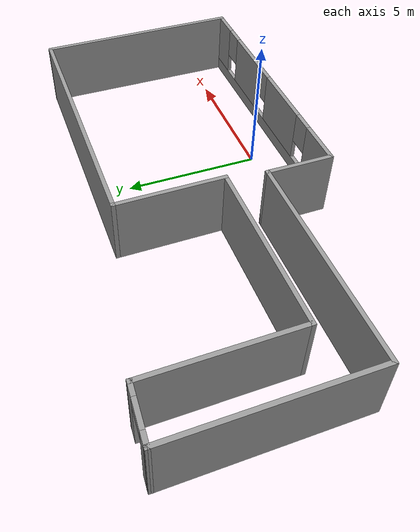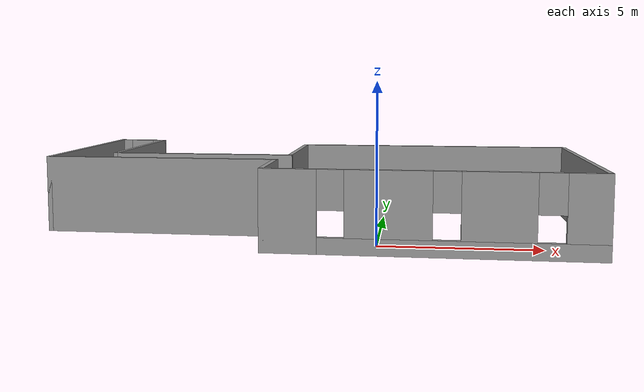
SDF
<?xml version='1.0'?>
<sdf version='1.6'>
  <model name='mapa_final'>
    <pose frame=''>-2.18923 3.20404 0 0 -0 0</pose>
    <link name='Wall_1'>
      <collision name='Wall_1_Collision'>
        <geometry>
          <box>
            <size>6.75 0.15 2.5</size>
          </box>
        </geometry>
        <pose frame=''>0 0 1.25 0 -0 0</pose>
      </collision>
      <visual name='Wall_1_Visual'>
        <pose frame=''>0 0 1.25 0 -0 0</pose>
        <geometry>
          <box>
            <size>6.75 0.15 2.5</size>
          </box>
        </geometry>
        <material>
          <script>
            <uri>file://media/materials/scripts/gazebo.material</uri>
            <name>Gazebo/Grey</name>
          </script>
          <ambient>1 1 1 1</ambient>
        </material>
      </visual>
      <pose frame=''>-8.72292 1.17292 0 0 0 -1.5708</pose>
    </link>
    <link name='Wall_10'>
      <pose frame=''>-7.84792 4.42292 0 0 -0 3.08451</pose>
      <visual name='Wall_10_Visual_0'>
        <pose frame=''>-0.700515 0 1.25 0 -0 0</pose>
        <geometry>
          <box>
            <size>0.501825 0.15 2.5</size>
          </box>
        </geometry>
        <material>
          <script>
            <uri>file://media/materials/scripts/gazebo.material</uri>
            <name>Gazebo/Grey</name>
          </script>
          <ambient>1 1 1 1</ambient>
        </material>
      </visual>
      <collision name='Wall_10_Collision_0'>
        <geometry>
          <box>
            <size>0.501825 0.15 2.5</size>
          </box>
        </geometry>
        <pose frame=''>-0.700515 0 1.25 0 -0 0</pose>
      </collision>
      <visual name='Wall_10_Visual_1'>
        <pose frame=''>0.700912 0 1.25 0 -0 0</pose>
        <geometry>
          <box>
            <size>0.50103 0.15 2.5</size>
          </box>
        </geometry>
        <material>
          <script>
            <uri>file://media/materials/scripts/gazebo.material</uri>
            <name>Gazebo/Grey</name>
          </script>
          <ambient>1 1 1 1</ambient>
        </material>
      </visual>
      <collision name='Wall_10_Collision_1'>
        <geometry>
          <box>
            <size>0.50103 0.15 2.5</size>
          </box>
        </geometry>
        <pose frame=''>0.700912 0 1.25 0 -0 0</pose>
      </collision>
      <visual name='Wall_10_Visual_2'>
        <pose frame=''>0.000397 0 2.25 0 -0 0</pose>
        <geometry>
          <box>
            <size>0.9 0.15 0.5</size>
          </box>
        </geometry>
        <material>
          <script>
            <uri>file://media/materials/scripts/gazebo.material</uri>
            <name>Gazebo/Grey</name>
          </script>
          <ambient>1 1 1 1</ambient>
        </material>
      </visual>
      <collision name='Wall_10_Collision_2'>
        <geometry>
          <box>
            <size>0.9 0.15 0.5</size>
          </box>
        </geometry>
        <pose frame=''>0.000397 0 2.25 0 -0 0</pose>
      </collision>
    </link>
    <link name='Wall_2'>
      <collision name='Wall_2_Collision'>
        <geometry>
          <box>
            <size>7.75 0.15 2.5</size>
          </box>
        </geometry>
        <pose frame=''>0 0 1.25 0 -0 0</pose>
      </collision>
      <visual name='Wall_2_Visual'>
        <pose frame=''>0 0 1.25 0 -0 0</pose>
        <geometry>
          <box>
            <size>7.75 0.15 2.5</size>
          </box>
        </geometry>
        <material>
          <script>
            <uri>file://media/materials/scripts/gazebo.material</uri>
            <name>Gazebo/Grey</name>
          </script>
          <ambient>1 1 1 1</ambient>
        </material>
      </visual>
      <pose frame=''>-4.92292 -2.12708 0 0 -0 0</pose>
    </link>
    <link name='Wall_3'>
      <collision name='Wall_3_Collision'>
        <geometry>
          <box>
            <size>2.5 0.15 2.5</size>
          </box>
        </geometry>
        <pose frame=''>0 0 1.25 0 -0 0</pose>
      </collision>
      <visual name='Wall_3_Visual'>
        <pose frame=''>0 0 1.25 0 -0 0</pose>
        <geometry>
          <box>
            <size>2.5 0.15 2.5</size>
          </box>
        </geometry>
        <material>
          <script>
            <uri>file://media/materials/scripts/gazebo.material</uri>
            <name>Gazebo/Grey</name>
          </script>
          <ambient>1 1 1 1</ambient>
        </material>
      </visual>
      <pose frame=''>-1.12292 -3.30208 0 0 0 -1.5708</pose>
    </link>
    <link name='Wall_4'>
      <pose frame=''>3.80208 -4.47708 0 0 -0 0</pose>
      <visual name='Wall_4_Visual_0'>
        <pose frame=''>-4.14301 0 1.25 0 -0 0</pose>
        <geometry>
          <box>
            <size>1.71398 0.15 2.5</size>
          </box>
        </geometry>
        <material>
          <script>
            <uri>file://media/materials/scripts/gazebo.material</uri>
            <name>Gazebo/Grey</name>
          </script>
          <ambient>1 1 1 1</ambient>
        </material>
      </visual>
      <collision name='Wall_4_Collision_0'>
        <geometry>
          <box>
            <size>1.71398 0.15 2.5</size>
          </box>
        </geometry>
        <pose frame=''>-4.14301 0 1.25 0 -0 0</pose>
      </collision>
      <visual name='Wall_4_Visual_1'>
        <pose frame=''>0.856991 0 0.25 0 -0 0</pose>
        <geometry>
          <box>
            <size>8.28602 0.15 0.5</size>
          </box>
        </geometry>
        <material>
          <script>
            <uri>file://media/materials/scripts/gazebo.material</uri>
            <name>Gazebo/Grey</name>
          </script>
          <ambient>1 1 1 1</ambient>
        </material>
      </visual>
      <collision name='Wall_4_Collision_1'>
        <geometry>
          <box>
            <size>8.28602 0.15 0.5</size>
          </box>
        </geometry>
        <pose frame=''>0.856991 0 0.25 0 -0 0</pose>
      </collision>
      <visual name='Wall_4_Visual_2'>
        <pose frame=''>-1.21503 0 1.5 0 -0 0</pose>
        <geometry>
          <box>
            <size>2.54198 0.15 2</size>
          </box>
        </geometry>
        <material>
          <script>
            <uri>file://media/materials/scripts/gazebo.material</uri>
            <name>Gazebo/Grey</name>
          </script>
          <ambient>1 1 1 1</ambient>
        </material>
      </visual>
      <collision name='Wall_4_Collision_2'>
        <geometry>
          <box>
            <size>2.54198 0.15 2</size>
          </box>
        </geometry>
        <pose frame=''>-1.21503 0 1.5 0 -0 0</pose>
      </collision>
      <visual name='Wall_4_Visual_3'>
        <pose frame=''>1.91588 0 1.5 0 -0 0</pose>
        <geometry>
          <box>
            <size>2.11984 0.15 2</size>
          </box>
        </geometry>
        <material>
          <script>
            <uri>file://media/materials/scripts/gazebo.material</uri>
            <name>Gazebo/Grey</name>
          </script>
          <ambient>1 1 1 1</ambient>
        </material>
      </visual>
      <collision name='Wall_4_Collision_3'>
        <geometry>
          <box>
            <size>2.11984 0.15 2</size>
          </box>
        </geometry>
        <pose frame=''>1.91588 0 1.5 0 -0 0</pose>
      </collision>
      <visual name='Wall_4_Visual_4'>
        <pose frame=''>4.3879 0 1.5 0 -0 0</pose>
        <geometry>
          <box>
            <size>1.2242 0.15 2</size>
          </box>
        </geometry>
        <material>
          <script>
            <uri>file://media/materials/scripts/gazebo.material</uri>
            <name>Gazebo/Grey</name>
          </script>
          <ambient>1 1 1 1</ambient>
        </material>
      </visual>
      <collision name='Wall_4_Collision_4'>
        <geometry>
          <box>
            <size>1.2242 0.15 2</size>
          </box>
        </geometry>
        <pose frame=''>4.3879 0 1.5 0 -0 0</pose>
      </collision>
      <visual name='Wall_4_Visual_5'>
        <pose frame=''>-2.88602 0 1.9 0 -0 0</pose>
        <geometry>
          <box>
            <size>0.8 0.15 1.2</size>
          </box>
        </geometry>
        <material>
          <script>
            <uri>file://media/materials/scripts/gazebo.material</uri>
            <name>Gazebo/Grey</name>
          </script>
          <ambient>1 1 1 1</ambient>
        </material>
      </visual>
      <collision name='Wall_4_Collision_5'>
        <geometry>
          <box>
            <size>0.8 0.15 1.2</size>
          </box>
        </geometry>
        <pose frame=''>-2.88602 0 1.9 0 -0 0</pose>
      </collision>
      <visual name='Wall_4_Visual_6'>
        <pose frame=''>0.455963 0 1.9 0 -0 0</pose>
        <geometry>
          <box>
            <size>0.8 0.15 1.2</size>
          </box>
        </geometry>
        <material>
          <script>
            <uri>file://media/materials/scripts/gazebo.material</uri>
            <name>Gazebo/Grey</name>
          </script>
          <ambient>1 1 1 1</ambient>
        </material>
      </visual>
      <collision name='Wall_4_Collision_6'>
        <geometry>
          <box>
            <size>0.8 0.15 1.2</size>
          </box>
        </geometry>
        <pose frame=''>0.455963 0 1.9 0 -0 0</pose>
      </collision>
      <visual name='Wall_4_Visual_7'>
        <pose frame=''>3.3758 0 1.9 0 -0 0</pose>
        <geometry>
          <box>
            <size>0.8 0.15 1.2</size>
          </box>
        </geometry>
        <material>
          <script>
            <uri>file://media/materials/scripts/gazebo.material</uri>
            <name>Gazebo/Grey</name>
          </script>
          <ambient>1 1 1 1</ambient>
        </material>
      </visual>
      <collision name='Wall_4_Collision_7'>
        <geometry>
          <box>
            <size>0.8 0.15 1.2</size>
          </box>
        </geometry>
        <pose frame=''>3.3758 0 1.9 0 -0 0</pose>
      </collision>
    </link>
    <link name='Wall_5'>
      <collision name='Wall_5_Collision'>
        <geometry>
          <box>
            <size>7.75 0.15 2.5</size>
          </box>
        </geometry>
        <pose frame=''>0 0 1.25 0 -0 0</pose>
      </collision>
      <visual name='Wall_5_Visual'>
        <pose frame=''>0 0 1.25 0 -0 0</pose>
        <geometry>
          <box>
            <size>7.75 0.15 2.5</size>
          </box>
        </geometry>
        <material>
          <script>
            <uri>file://media/materials/scripts/gazebo.material</uri>
            <name>Gazebo/Grey</name>
          </script>
          <ambient>1 1 1 1</ambient>
        </material>
      </visual>
      <pose frame=''>8.72708 -0.677078 0 0 -0 1.5708</pose>
    </link>
    <link name='Wall_6'>
      <collision name='Wall_6_Collision'>
        <geometry>
          <box>
            <size>9.75 0.15 2.5</size>
          </box>
        </geometry>
        <pose frame=''>0 0 1.25 0 -0 0</pose>
      </collision>
      <visual name='Wall_6_Visual'>
        <pose frame=''>0 0 1.25 0 -0 0</pose>
        <geometry>
          <box>
            <size>9.75 0.15 2.5</size>
          </box>
        </geometry>
        <material>
          <script>
            <uri>file://media/materials/scripts/gazebo.material</uri>
            <name>Gazebo/Grey</name>
          </script>
          <ambient>1 1 1 1</ambient>
        </material>
      </visual>
      <pose frame=''>3.92708 3.12292 0 0 -0 3.14159</pose>
    </link>
    <link name='Wall_7'>
      <collision name='Wall_7_Collision'>
        <geometry>
          <box>
            <size>4 0.15 2.5</size>
          </box>
        </geometry>
        <pose frame=''>0 0 1.25 0 -0 0</pose>
      </collision>
      <visual name='Wall_7_Visual'>
        <pose frame=''>0 0 1.25 0 -0 0</pose>
        <geometry>
          <box>
            <size>4 0.15 2.5</size>
          </box>
        </geometry>
        <material>
          <script>
            <uri>file://media/materials/scripts/gazebo.material</uri>
            <name>Gazebo/Grey</name>
          </script>
          <ambient>1 1 1 1</ambient>
        </material>
      </visual>
      <pose frame=''>-0.872922 1.19792 0 0 0 -1.5708</pose>
    </link>
    <link name='Wall_8'>
      <collision name='Wall_8_Collision'>
        <geometry>
          <box>
            <size>6.25 0.15 2.5</size>
          </box>
        </geometry>
        <pose frame=''>0 0 1.25 0 -0 0</pose>
      </collision>
      <visual name='Wall_8_Visual'>
        <pose frame=''>0 0 1.25 0 -0 0</pose>
        <geometry>
          <box>
            <size>6.25 0.15 2.5</size>
          </box>
        </geometry>
        <material>
          <script>
            <uri>file://media/materials/scripts/gazebo.material</uri>
            <name>Gazebo/Grey</name>
          </script>
          <ambient>1 1 1 1</ambient>
        </material>
      </visual>
      <pose frame=''>-3.92292 -0.727078 0 0 -0 3.14159</pose>
    </link>
    <link name='Wall_9'>
      <collision name='Wall_9_Collision'>
        <geometry>
          <box>
            <size>5.25 0.15 2.5</size>
          </box>
        </geometry>
        <pose frame=''>0 0 1.25 0 -0 0</pose>
      </collision>
      <visual name='Wall_9_Visual'>
        <pose frame=''>0 0 1.25 0 -0 0</pose>
        <geometry>
          <box>
            <size>5.25 0.15 2.5</size>
          </box>
        </geometry>
        <material>
          <script>
            <uri>file://media/materials/scripts/gazebo.material</uri>
            <name>Gazebo/Grey</name>
          </script>
          <ambient>1 1 1 1</ambient>
        </material>
      </visual>
      <pose frame=''>-6.97292 1.82292 0 0 -0 1.5708</pose>
    </link>
    <static>1</static>
  </model>
</sdf>
